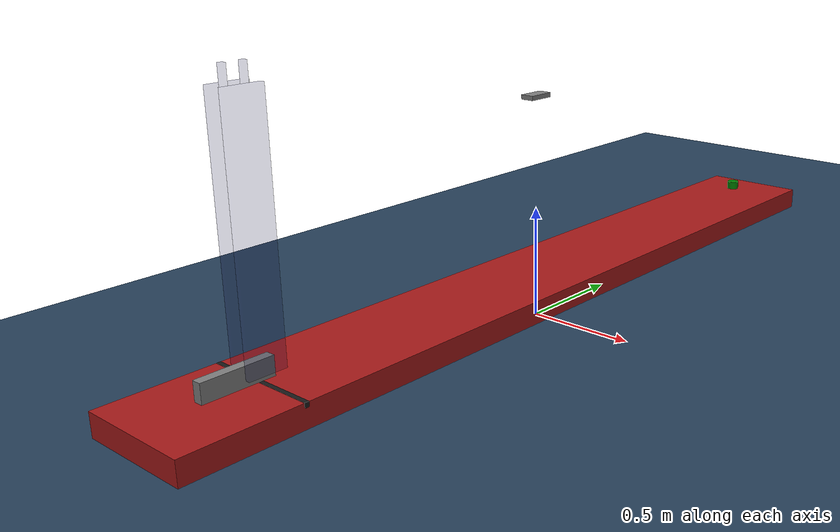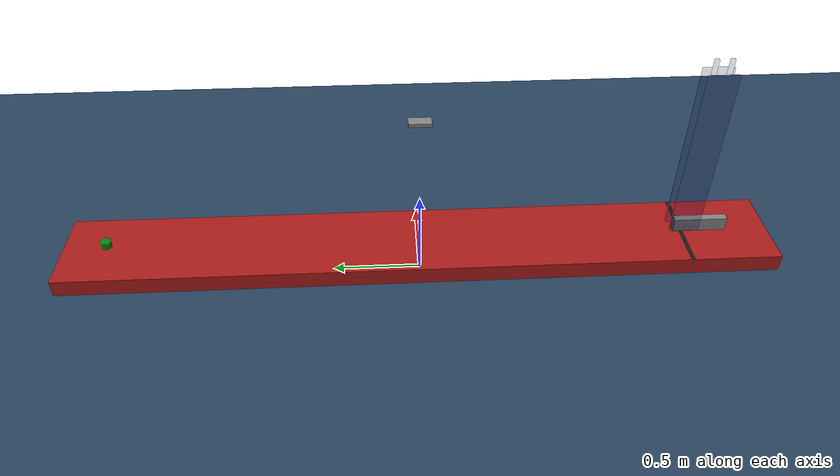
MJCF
<mujoco model="ur5e scene">
<!-- ENGINE SETUP -->
  <compiler angle="radian" meshdir="universal_robots_ur5e/assets" autolimits="true"/>
  <option>
    <flag multiccd="enable"/>
  </option>
  <statistic center="0.3 0 0.4" extent="3"/>

<!-- Defaults -->
  <default class="main">
    <default class="small_enc">
      <geom size="0.01 0.01 0.5" type="box" rgba="0 0 0.3 0.2" condim="1"/>
    </default>
    <default class="large_enc">
      <geom size="0.01 0.08 0.5" type="box" rgba="0 0 0.3 0.2" condim="1"/>
    </default>
    <default class="boxes">
      <geom type="box" size="0.029 0.029 0.05" rgba="0 0.5 0 1" mass="0.1" condim="1"/>
      <joint type="free"/>
    </default>

    <default class="circularItems">
      <geom type="cylinder" size="0.029 0.02 0" rgba="0 0.5 0 1" mass="0.05" condim="1"/>
      <joint type="free"/>
    </default>

  </default>

<!-- Actuators -->
  <actuator>
    <motor name="pusher" joint="plate"/>
    <position name="slide_x" joint="slide_x"/>
  </actuator>

<!-- Lighting -->
  <visual>
    <headlight diffuse="0.6 0.6 0.6" ambient="0.1 0.1 0.1" specular="0 0 0"/>
    <rgba haze="0.15 0.25 0.35 1"/>
    <global azimuth="120" elevation="-20" offwidth="640" offheight="480"/>
  </visual>

<!-- Assets -->
  <asset>
    <texture type="skybox" builtin="gradient" rgb1="0.3 0.5 0.7" rgb2="0 0 0" width="512" height="3072"/>
    <texture type="2d" name="groundplane" builtin="checker" mark="edge" rgb1="0.2 0.3 0.4" rgb2="0.1 0.2 0.3"
      markrgb="0.8 0.8 0.8" width="300" height="300"/>
    <material name="groundplane" texture="groundplane" texuniform="true" texrepeat="5 5" reflectance="0.2"/>

    <texture type="2d" name="conveyor" builtin="gradient" mark="edge" rgb1="0.5 0.1 0.1" rgb2="0.8 0.1 0.1"
      markrgb="0.8 0.8 0.8" width="300" height="300"/>
    <material name="conveyor" texture="conveyor" texuniform="true" texrepeat="5 5" reflectance="0.2"/>
  </asset>

    <!-- MODEL TREE STARTS HERE -->
  <worldbody>
    <light pos="0 0 1.5" dir="0 0 -1" directional="true"/>
    <geom name="floor" size="0 0 0.05" type="plane" material="groundplane" condim="3"/>

    <!-- Camera model -->
    <body pos="0 0 1" euler="0 0 1.5708">
      <geom size="0.06 0.03 0.01" type="box"/>
      <camera name="rgbcam" mode="fixed" fovy="48.8"/>
    </body>

    <!-- Conveyor -->
    <body pos="0 0 0.2">
      <!-- Conveyor top surface -->
      <geom name="conveyor_geom" pos="0 0 -0.04" size="0.25 2 0.05" type="box" material="conveyor" friction="0 0 0" condim="1"/>
      <geom name="conveyor_friction_strip" pos="0 -1.5 0" size="0.25 0.01 0.0105" type="box" rgba="0.1 0.1 0.1 1" condim="3"/>

      <body>
        <!-- Mobile platform -->
        <body>
          <!-- pusher plate -->
          <geom size="0.02 0.15 0.04" pos="0 -1.6 0.06" type="box" condim="1"/>
          <joint name="plate" type="slide" stiffness="100" damping="10" axis="0 1 0"/>
        </body>

        <body childclass="small_enc">
          <!-- Enclosure for circularItems -->
          <geom pos="0 -1.54 0.62"/>
          <geom pos="0 -1.46 0.62"/>
        </body>

        <body childclass="large_enc">
          <!-- Enclosure for circularItems -->
          <geom pos="0.04 -1.5 0.55"/>
          <geom pos="-0.04 -1.5 0.55"/>
        </body>

        <!-- platform slider -->
        <joint name="slide_x" type="slide" axis="1 0 0" stiffness="1000" damping="100"/>
      </body>

    </body>

    <!-- solo dappa -->
    <body pos="0 1.75 0.25" childclass="circularItems"> <geom/><joint/> </body>

  </worldbody>

</mujoco>
